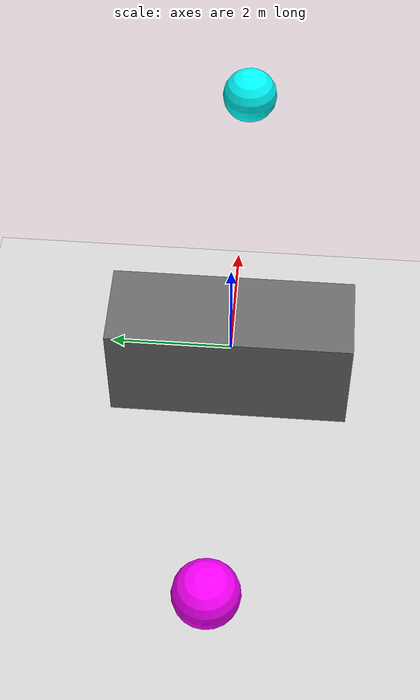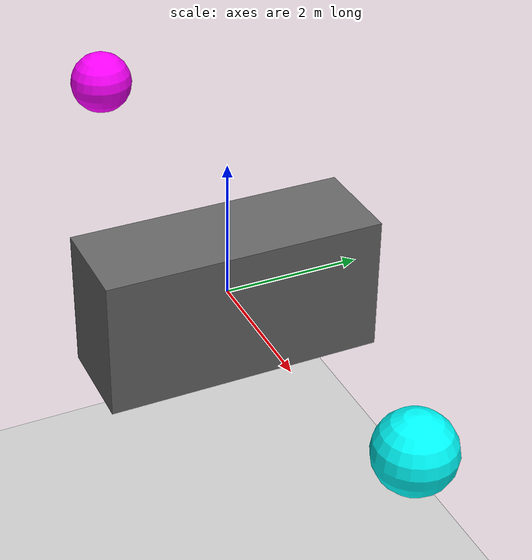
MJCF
<mujoco>
  <option gravity="0 0 -8.5"/>
  <worldbody>
    <!-- Barrier -->
    <body name="object_3" pos="0 0 0">
      <geom type="box" size="0.7 2 1" rgba="0.4 0.4 0.4 1" friction="0.6 0.6 0.6"/>
    </body>
    <!-- Ground Surface -->
    <body name="object_4" pos="-10 0 -10">
      <geom type="plane" size="30 30 0.1" rgba="0.8 0.8 0.8 1" friction="0.5 0.5 0.5"/>
    </body>
    <!-- Elastic Sphere -->
    <body name="object_1" pos="5 0 1">
      <geom type="sphere" size="0.5" density="1" rgba="0 1 1 1"/>
      <joint name="object_1_joint" type="free"/>
    </body>
    <!-- Inelastic Sphere -->
    <body name="object_2" pos="-5 0 1">
      <geom type="sphere" size="0.5" density="1" rgba="1 0 1 1"/>
      <joint name="object_2_joint" type="free"/>
    </body>
  </worldbody>
</mujoco>
